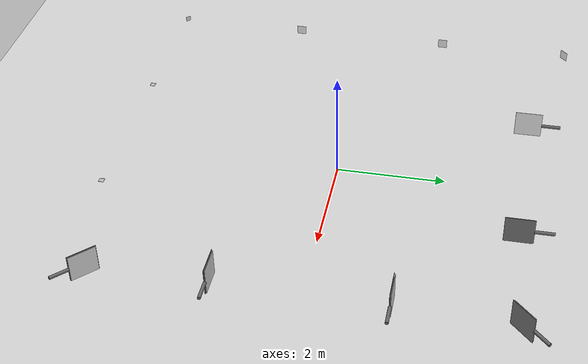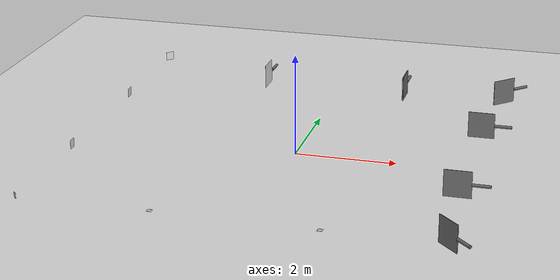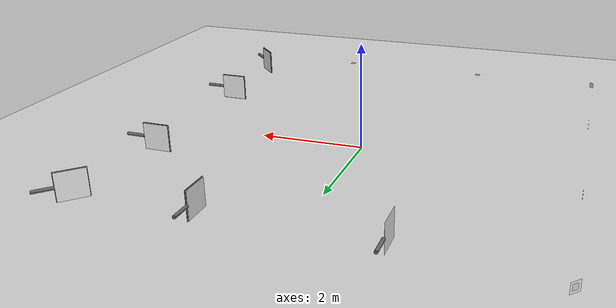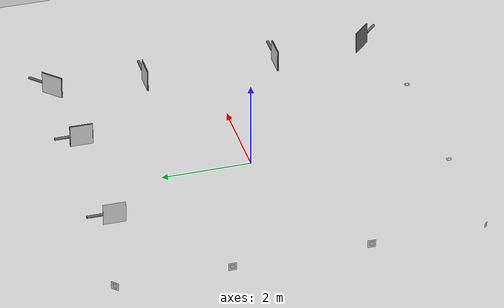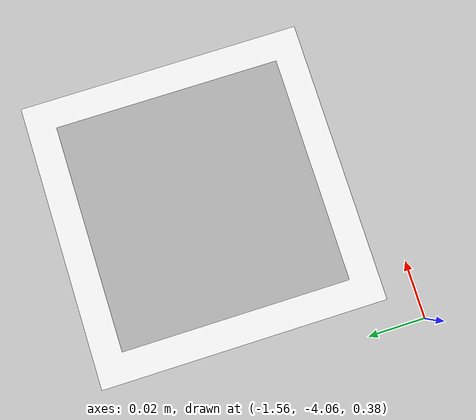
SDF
<?xml version="1.0"?>
<sdf version="1.6">
  <world name="default">
    <!-- Tweak to run at higher or lower speeds -->
    <physics name="normal" type="ode">
      <real_time_update_rate>1000</real_time_update_rate>
      <max_step_size>0.001</max_step_size>
    </physics>
    <!-- Ground plane -->
    <include>
      <uri>model://ground_plane</uri>
    </include>
    <!-- Lighting -->
    <include>
      <uri>model://sun</uri>
    </include>
    <!-- ArUco markers -->
    <model name="marker0">
      <include>
        <static>true</static>
        <uri>model://marker_0</uri>
      </include>
      <pose>4 -4 0.38 0 -1.5707963267948966 -0.7853981633974483</pose>
    </model>
    <model name="marker1">
      <include>
        <static>true</static>
        <uri>model://marker_1</uri>
      </include>
      <pose>4 -1.5 0.38 0 -1.5707963267948966 0</pose>
    </model>
    <model name="marker2">
      <include>
        <static>true</static>
        <uri>model://marker_2</uri>
      </include>
      <pose>4 1.5 0.38 0 -1.5707963267948966 0</pose>
    </model>
    <model name="marker3">
      <include>
        <static>true</static>
        <uri>model://marker_3</uri>
      </include>
      <pose>4 4 0.38 0 -1.5707963267948966 0.7853981633974483</pose>
    </model>
    <model name="marker4">
      <include>
        <static>true</static>
        <uri>model://marker_4</uri>
      </include>
      <pose>1.5 4 0.38 0 -1.5707963267948966 1.5707963267948966</pose>
    </model>
    <model name="marker5">
      <include>
        <static>true</static>
        <uri>model://marker_5</uri>
      </include>
      <pose>-1.5 4 0.38 0 -1.5707963267948966 1.5707963267948966</pose>
    </model>
    <model name="marker6">
      <include>
        <static>true</static>
        <uri>model://marker_6</uri>
      </include>
      <pose>-4 -4 0.38 0 -1.5707963267948966 3.9269908169872414</pose>
    </model>
    <model name="marker7">
      <include>
        <static>true</static>
        <uri>model://marker_7</uri>
      </include>
      <pose>-4 1.5 0.38 0 -1.5707963267948966 -3.141592653589793</pose>
    </model>
    <model name="marker8">
      <include>
        <static>true</static>
        <uri>model://marker_8</uri>
      </include>
      <pose>-4 -1.5 0.38 0 -1.5707963267948966 -3.141592653589793</pose>
    </model>
    <model name="marker9">
      <include>
        <static>true</static>
        <uri>model://marker_9</uri>
      </include>
      <pose>-4 4 0.38 0 -1.5707963267948966 -3.9269908169872414</pose>
    </model>
    <model name="marker10">
      <include>
        <static>true</static>
        <uri>model://marker_10</uri>
      </include>
      <pose>1.5 -4 0.38 0 -1.5707963267948966 -1.5707963267948966</pose>
    </model>
    <model name="marker11">
      <include>
        <static>true</static>
        <uri>model://marker_11</uri>
      </include>
      <pose>-1.5 -4 0.38 0 -1.5707963267948966 -1.5707963267948966</pose>
    </model>

  </world>
</sdf>

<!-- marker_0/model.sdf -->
<sdf version="1.6">
  <model name="aruco_marker_0">
    <static>true</static>
    <link name="link">
      <!-- Support pole: top reaches the panel's lower edge (0.35 m), no overlap -->
      <visual name="pole">
        <pose>0 0 0.175 0 0 0</pose>
        <geometry><cylinder><radius>0.03</radius><length>0.35</length></cylinder></geometry>
        <material>
          <ambient>0.3 0.3 0.3 1</ambient>
          <diffuse>0.4 0.4 0.4 1</diffuse>
          <specular>0.1 0.1 0.1 1</specular>
        </material>
      </visual>
      <collision name="pole_col">
        <pose>0 0 0.175 0 0 0</pose>
        <geometry><cylinder><radius>0.03</radius><length>0.35</length></cylinder></geometry>
      </collision>
      <!-- Marker panel 0.50 m, center 0.6 m high; lower edge at 0.35 m -->
      <!-- Local +Y face carries the texture; world yaw aims it inward. -->
      <visual name="marker">
        <pose>0 0.011 0.6 1.5708 0 0</pose>
        <geometry><box><size>0.50 0.50 0.002</size></box></geometry>
        <material>
          <ambient>1.0 1.0 1.0 1</ambient>
          <diffuse>1.0 1.0 1.0 1</diffuse>
          <specular>0.0 0.0 0.0 1</specular>
          <pbr>
            <metal>
              <albedo_map>model://aruco/marker_0/materials/textures/marker_0.png</albedo_map>
              <metalness>0.0</metalness>
              <roughness>1.0</roughness>
            </metal>
          </pbr>
        </material>
      </visual>
      <collision name="marker_col">
        <pose>0 0 0.6 0 0 0</pose>
        <geometry><box><size>0.50 0.04 0.52</size></box></geometry>
      </collision>
      <!-- Opaque gray backing on the local -Y side: occludes the texture from
           behind so a camera facing the back cannot detect a mirrored (flipped) marker. -->
      <visual name="back_panel">
        <pose>0 -0.01 0.6 1.5708 0 0</pose>
        <geometry><box><size>0.52 0.52 0.005</size></box></geometry>
        <material>
          <ambient>0.5 0.5 0.5 1</ambient>
          <diffuse>0.5 0.5 0.5 1</diffuse>
          <specular>0.1 0.1 0.1 1</specular>
        </material>
      </visual>
    </link>
  </model>
</sdf>

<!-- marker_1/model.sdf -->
<sdf version="1.6">
  <model name="aruco_marker_1">
    <static>true</static>
    <link name="link">
      <!-- Support pole: top reaches the panel's lower edge (0.35 m), no overlap -->
      <visual name="pole">
        <pose>0 0 0.175 0 0 0</pose>
        <geometry><cylinder><radius>0.03</radius><length>0.35</length></cylinder></geometry>
        <material>
          <ambient>0.3 0.3 0.3 1</ambient>
          <diffuse>0.4 0.4 0.4 1</diffuse>
          <specular>0.1 0.1 0.1 1</specular>
        </material>
      </visual>
      <collision name="pole_col">
        <pose>0 0 0.175 0 0 0</pose>
        <geometry><cylinder><radius>0.03</radius><length>0.35</length></cylinder></geometry>
      </collision>
      <!-- Marker panel 0.50 m, center 0.6 m high; lower edge at 0.35 m -->
      <!-- Local +Y face carries the texture; world yaw aims it inward. -->
      <visual name="marker">
        <pose>0 0.011 0.6 1.5708 0 0</pose>
        <geometry><box><size>0.50 0.50 0.002</size></box></geometry>
        <material>
          <ambient>1.0 1.0 1.0 1</ambient>
          <diffuse>1.0 1.0 1.0 1</diffuse>
          <specular>0.0 0.0 0.0 1</specular>
          <pbr>
            <metal>
              <albedo_map>model://aruco/marker_1/materials/textures/marker_1.png</albedo_map>
              <metalness>0.0</metalness>
              <roughness>1.0</roughness>
            </metal>
          </pbr>
        </material>
      </visual>
      <collision name="marker_col">
        <pose>0 0 0.6 0 0 0</pose>
        <geometry><box><size>0.50 0.04 0.52</size></box></geometry>
      </collision>
      <!-- Opaque gray backing on the local -Y side: occludes the texture from
           behind so a camera facing the back cannot detect a mirrored (flipped) marker. -->
      <visual name="back_panel">
        <pose>0 -0.01 0.6 1.5708 0 0</pose>
        <geometry><box><size>0.52 0.52 0.005</size></box></geometry>
        <material>
          <ambient>0.5 0.5 0.5 1</ambient>
          <diffuse>0.5 0.5 0.5 1</diffuse>
          <specular>0.1 0.1 0.1 1</specular>
        </material>
      </visual>
    </link>
  </model>
</sdf>

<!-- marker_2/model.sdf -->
<sdf version="1.6">
  <model name="aruco_marker_2">
    <static>true</static>
    <link name="link">
      <!-- Support pole: top reaches the panel's lower edge (0.35 m), no overlap -->
      <visual name="pole">
        <pose>0 0 0.175 0 0 0</pose>
        <geometry><cylinder><radius>0.03</radius><length>0.35</length></cylinder></geometry>
        <material>
          <ambient>0.3 0.3 0.3 1</ambient>
          <diffuse>0.4 0.4 0.4 1</diffuse>
          <specular>0.1 0.1 0.1 1</specular>
        </material>
      </visual>
      <collision name="pole_col">
        <pose>0 0 0.175 0 0 0</pose>
        <geometry><cylinder><radius>0.03</radius><length>0.35</length></cylinder></geometry>
      </collision>
      <!-- Marker panel 0.50 m, center 0.6 m high; lower edge at 0.35 m -->
      <!-- Local +Y face carries the texture; world yaw aims it inward. -->
      <visual name="marker">
        <pose>0 0.011 0.6 1.5708 0 0</pose>
        <geometry><box><size>0.50 0.50 0.002</size></box></geometry>
        <material>
          <ambient>1.0 1.0 1.0 1</ambient>
          <diffuse>1.0 1.0 1.0 1</diffuse>
          <specular>0.0 0.0 0.0 1</specular>
          <pbr>
            <metal>
              <albedo_map>model://aruco/marker_2/materials/textures/marker_2.png</albedo_map>
              <metalness>0.0</metalness>
              <roughness>1.0</roughness>
            </metal>
          </pbr>
        </material>
      </visual>
      <collision name="marker_col">
        <pose>0 0 0.6 0 0 0</pose>
        <geometry><box><size>0.50 0.04 0.52</size></box></geometry>
      </collision>
      <!-- Opaque gray backing on the local -Y side: occludes the texture from
           behind so a camera facing the back cannot detect a mirrored (flipped) marker. -->
      <visual name="back_panel">
        <pose>0 -0.01 0.6 1.5708 0 0</pose>
        <geometry><box><size>0.52 0.52 0.005</size></box></geometry>
        <material>
          <ambient>0.5 0.5 0.5 1</ambient>
          <diffuse>0.5 0.5 0.5 1</diffuse>
          <specular>0.1 0.1 0.1 1</specular>
        </material>
      </visual>
    </link>
  </model>
</sdf>

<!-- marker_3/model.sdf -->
<sdf version="1.6">
  <model name="aruco_marker_3">
    <static>true</static>
    <link name="link">
      <!-- Support pole: top reaches the panel's lower edge (0.35 m), no overlap -->
      <visual name="pole">
        <pose>0 0 0.175 0 0 0</pose>
        <geometry><cylinder><radius>0.03</radius><length>0.35</length></cylinder></geometry>
        <material>
          <ambient>0.3 0.3 0.3 1</ambient>
          <diffuse>0.4 0.4 0.4 1</diffuse>
          <specular>0.1 0.1 0.1 1</specular>
        </material>
      </visual>
      <collision name="pole_col">
        <pose>0 0 0.175 0 0 0</pose>
        <geometry><cylinder><radius>0.03</radius><length>0.35</length></cylinder></geometry>
      </collision>
      <!-- Marker panel 0.50 m, center 0.6 m high; lower edge at 0.35 m -->
      <!-- Local +Y face carries the texture; world yaw aims it inward. -->
      <visual name="marker">
        <pose>0 0.011 0.6 1.5708 0 0</pose>
        <geometry><box><size>0.50 0.50 0.002</size></box></geometry>
        <material>
          <ambient>1.0 1.0 1.0 1</ambient>
          <diffuse>1.0 1.0 1.0 1</diffuse>
          <specular>0.0 0.0 0.0 1</specular>
          <pbr>
            <metal>
              <albedo_map>model://aruco/marker_3/materials/textures/marker_3.png</albedo_map>
              <metalness>0.0</metalness>
              <roughness>1.0</roughness>
            </metal>
          </pbr>
        </material>
      </visual>
      <collision name="marker_col">
        <pose>0 0 0.6 0 0 0</pose>
        <geometry><box><size>0.50 0.04 0.52</size></box></geometry>
      </collision>
      <!-- Opaque gray backing on the local -Y side: occludes the texture from
           behind so a camera facing the back cannot detect a mirrored (flipped) marker. -->
      <visual name="back_panel">
        <pose>0 -0.01 0.6 1.5708 0 0</pose>
        <geometry><box><size>0.52 0.52 0.005</size></box></geometry>
        <material>
          <ambient>0.5 0.5 0.5 1</ambient>
          <diffuse>0.5 0.5 0.5 1</diffuse>
          <specular>0.1 0.1 0.1 1</specular>
        </material>
      </visual>
    </link>
  </model>
</sdf>

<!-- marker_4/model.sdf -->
<sdf version="1.6">
  <model name="aruco_marker_4">
    <static>true</static>
    <link name="link">
      <!-- Support pole: top reaches the panel's lower edge (0.35 m), no overlap -->
      <visual name="pole">
        <pose>0 0 0.175 0 0 0</pose>
        <geometry><cylinder><radius>0.03</radius><length>0.35</length></cylinder></geometry>
        <material>
          <ambient>0.3 0.3 0.3 1</ambient>
          <diffuse>0.4 0.4 0.4 1</diffuse>
          <specular>0.1 0.1 0.1 1</specular>
        </material>
      </visual>
      <collision name="pole_col">
        <pose>0 0 0.175 0 0 0</pose>
        <geometry><cylinder><radius>0.03</radius><length>0.35</length></cylinder></geometry>
      </collision>
      <!-- Marker panel 0.50 m, center 0.6 m high; lower edge at 0.35 m -->
      <!-- Local +Y face carries the texture; world yaw aims it inward. -->
      <visual name="marker">
        <pose>0 0.011 0.6 1.5708 0 0</pose>
        <geometry><box><size>0.50 0.50 0.002</size></box></geometry>
        <material>
          <ambient>1.0 1.0 1.0 1</ambient>
          <diffuse>1.0 1.0 1.0 1</diffuse>
          <specular>0.0 0.0 0.0 1</specular>
          <pbr>
            <metal>
              <albedo_map>model://aruco/marker_4/materials/textures/marker_4.png</albedo_map>
              <metalness>0.0</metalness>
              <roughness>1.0</roughness>
            </metal>
          </pbr>
        </material>
      </visual>
      <collision name="marker_col">
        <pose>0 0 0.6 0 0 0</pose>
        <geometry><box><size>0.50 0.04 0.52</size></box></geometry>
      </collision>
      <!-- Opaque gray backing on the local -Y side: occludes the texture from
           behind so a camera facing the back cannot detect a mirrored (flipped) marker. -->
      <visual name="back_panel">
        <pose>0 -0.01 0.6 1.5708 0 0</pose>
        <geometry><box><size>0.52 0.52 0.005</size></box></geometry>
        <material>
          <ambient>0.5 0.5 0.5 1</ambient>
          <diffuse>0.5 0.5 0.5 1</diffuse>
          <specular>0.1 0.1 0.1 1</specular>
        </material>
      </visual>
    </link>
  </model>
</sdf>

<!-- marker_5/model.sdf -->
<sdf version="1.6">
  <model name="aruco_marker_5">
    <static>true</static>
    <link name="link">
      <!-- Support pole: top reaches the panel's lower edge (0.35 m), no overlap -->
      <visual name="pole">
        <pose>0 0 0.175 0 0 0</pose>
        <geometry><cylinder><radius>0.03</radius><length>0.35</length></cylinder></geometry>
        <material>
          <ambient>0.3 0.3 0.3 1</ambient>
          <diffuse>0.4 0.4 0.4 1</diffuse>
          <specular>0.1 0.1 0.1 1</specular>
        </material>
      </visual>
      <collision name="pole_col">
        <pose>0 0 0.175 0 0 0</pose>
        <geometry><cylinder><radius>0.03</radius><length>0.35</length></cylinder></geometry>
      </collision>
      <!-- Marker panel 0.50 m, center 0.6 m high; lower edge at 0.35 m -->
      <!-- Local +Y face carries the texture; world yaw aims it inward. -->
      <visual name="marker">
        <pose>0 0.011 0.6 1.5708 0 0</pose>
        <geometry><box><size>0.50 0.50 0.002</size></box></geometry>
        <material>
          <ambient>1.0 1.0 1.0 1</ambient>
          <diffuse>1.0 1.0 1.0 1</diffuse>
          <specular>0.0 0.0 0.0 1</specular>
          <pbr>
            <metal>
              <albedo_map>model://aruco/marker_5/materials/textures/marker_5.png</albedo_map>
              <metalness>0.0</metalness>
              <roughness>1.0</roughness>
            </metal>
          </pbr>
        </material>
      </visual>
      <collision name="marker_col">
        <pose>0 0 0.6 0 0 0</pose>
        <geometry><box><size>0.50 0.04 0.52</size></box></geometry>
      </collision>
    </link>
  </model>
</sdf>

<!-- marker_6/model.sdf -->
<sdf version="1.6">
    <model name="marker_6">
         <link name='marker'>
            <pose frame=''>0 0 0 0 0 0</pose>
            <visual name='visual'>
                <geometry>
                    <box>
                        <size>0.1 0.1 1e-5</size>
                    </box>
                </geometry>
                <material>
                    <script>
                        <uri>model://marker_6/materials/scripts</uri>
                        <uri>model://marker_6/materials/textures</uri>
                        <name>marker_material6</name>
                    </script>
                    <ambient>1 1 1 1</ambient>
                    <diffuse>1 1 1 1</diffuse>
                    <specular>0 0 0 1</specular>
                    <emissive>1 1 1 0</emissive>
                </material>
                <pose frame=''>0 0 0 0 -0 0</pose>
                <cast_shadows>1</cast_shadows>
                <transparency>0</transparency>
            </visual>
            <collision name='collision'>
                <laser_retro>0</laser_retro>
                <max_contacts>10</max_contacts>
                <pose frame=''>0 0 0 0 -0 0</pose>
                <geometry>
                    <box>
                        <size>0.1 0.1 1e-05</size>
                    </box>
                </geometry>
            </collision>
        </link>

        <link name='marker_pad'>
            <pose frame='marker'>0 0 -1e-5 0 -0 0</pose>
            <visual name='visual'>
                <geometry>
                    <box>
                        <size>0.1 0.1 1e-5</size>
                    </box>
                </geometry>
                <material>
                    <lighting>1</lighting>
                    <script>
                        <uri>file://media/materials/scripts/gazebo.material</uri>
                        <name>Gazebo/White</name>
                    </script>
                    <ambient>0.3 0.3 0.3 1</ambient>
                    <diffuse>0.7 0.7 0.7 1</diffuse>
                    <specular>0.01 0.01 0.01 1</specular>
                    <emissive>1 1 1 0</emissive>
                </material>
                <cast_shadows>1</cast_shadows>
                <transparency>0</transparency>
            </visual>
            <collision name='collision'>
                <laser_retro>0</laser_retro>
                <max_contacts>10</max_contacts>
                <pose frame=''>0 0 0 0 -0 0</pose>
                <geometry>
                    <box>
                        <size>0.1 0.1 1e-5</size>
                    </box>
                </geometry>
            </collision>
        </link>

        <joint name='marker_JOINT_marker_pad' type='revolute'>
            <parent>marker</parent>
            <child>marker_pad</child>
            <pose frame=''>0 0 0 0 -0 0</pose>
            <axis>
                <xyz>0 0 1</xyz>
                <limit>
                    <upper>0</upper>
                    <lower>0</lower>
                </limit>
            </axis>
        </joint>

        <static>1</static>
        <allow_auto_disable>1</allow_auto_disable>

    </model>
</sdf>

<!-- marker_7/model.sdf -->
<sdf version="1.6">
        <model name="marker_7">
            <link name='marker'>
                <pose frame=''>0 0 0 0 0 0</pose>
                <visual name='visual'>
                    <geometry>
                        <box>
                            <size>0.1778 0.1778 1e-5</size>
                        </box>
                    </geometry>
                    <material>
                        <script>
                            <uri>model://marker_7/materials/scripts</uri>
                            <uri>model://marker_7/materials/textures</uri>
                            <name>ArucoVisualMarker7/Marker</name>
                        </script>
                        <ambient>1 1 1 1</ambient>
                        <diffuse>1 1 1 1</diffuse>
                        <specular>0 0 0 1</specular>
                        <emissive>1 1 1 0</emissive>
                        <shader type='vertex'>
                            <normal_map>__default__</normal_map>
                        </shader>
                    </material>
                    <pose frame=''>0 0 0 0 -0 0</pose>
                    <cast_shadows>1</cast_shadows>
                    <transparency>0</transparency>
                </visual>
                <collision name='collision'>
                    <laser_retro>0</laser_retro>
                    <max_contacts>10</max_contacts>
                    <pose frame=''>0 0 0 0 -0 0</pose>
                    <geometry>
                        <box>
                            <size>0.1 0.1 1e-05</size>
                        </box>
                    </geometry>
                </collision>
            </link>

            <link name='marker_pad'>
                <pose frame='marker'>0 0 -1e-5 0 -0 0</pose>
                <visual name='visual'>
                    <geometry>
                        <box>
                            <size>0.1 0.1 1e-5</size>
                        </box>
                    </geometry>
                    <material>
                        <lighting>1</lighting>
                        <script>
                            <uri>file://media/materials/scripts/gazebo.material</uri>
                            <name>Gazebo/White</name>
                        </script>
                        <ambient>0.3 0.3 0.3 1</ambient>
                        <diffuse>0.7 0.7 0.7 1</diffuse>
                        <specular>0.01 0.01 0.01 1</specular>
                        <emissive>1 1 1 0</emissive>
                        <shader type='vertex'>
                            <normal_map>__default__</normal_map>
                        </shader>
                    </material>
                    <cast_shadows>1</cast_shadows>
                    <transparency>0</transparency>
                </visual>
                <collision name='collision'>
                    <laser_retro>0</laser_retro>
                    <max_contacts>10</max_contacts>
                    <pose frame=''>0 0 0 0 -0 0</pose>
                    <geometry>
                        <box>
                            <size>0.1 0.1 1e-5</size>
                        </box>
                    </geometry>
                </collision>
            </link>

            <joint name='marker_JOINT_marker_pad' type='revolute'>
                <parent>marker</parent>
                <child>marker_pad</child>
                <pose frame=''>0 0 0 0 -0 0</pose>
                <axis>
                    <xyz>0 0 1</xyz>
                    <limit>
                        <upper>0</upper>
                        <lower>0</lower>
                    </limit>
                </axis>
            </joint>

            <static>1</static>
            <allow_auto_disable>1</allow_auto_disable>

        </model>
    </sdf>

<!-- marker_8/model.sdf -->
<sdf version="1.6">
        <model name="marker_8">
            <link name='marker'>
                <pose frame=''>0 0 0 0 0 0</pose>
                <visual name='visual'>
                    <geometry>
                        <box>
                            <size>0.1778 0.1778 1e-5</size>
                        </box>
                    </geometry>
                    <material>
                        <script>
                            <uri>model://marker_8/materials/scripts</uri>
                            <uri>model://marker_8/materials/textures</uri>
                            <name>ArucoVisualMarker8/Marker</name>
                        </script>
                        <ambient>1 1 1 1</ambient>
                        <diffuse>1 1 1 1</diffuse>
                        <specular>0 0 0 1</specular>
                        <emissive>1 1 1 0</emissive>
                        <shader type='vertex'>
                            <normal_map>__default__</normal_map>
                        </shader>
                    </material>
                    <pose frame=''>0 0 0 0 -0 0</pose>
                    <cast_shadows>1</cast_shadows>
                    <transparency>0</transparency>
                </visual>
                <collision name='collision'>
                    <laser_retro>0</laser_retro>
                    <max_contacts>10</max_contacts>
                    <pose frame=''>0 0 0 0 -0 0</pose>
                    <geometry>
                        <box>
                            <size>0.1 0.1 1e-05</size>
                        </box>
                    </geometry>
                </collision>
            </link>

            <link name='marker_pad'>
                <pose frame='marker'>0 0 -1e-5 0 -0 0</pose>
                <visual name='visual'>
                    <geometry>
                        <box>
                            <size>0.1 0.1 1e-5</size>
                        </box>
                    </geometry>
                    <material>
                        <lighting>1</lighting>
                        <script>
                            <uri>file://media/materials/scripts/gazebo.material</uri>
                            <name>Gazebo/White</name>
                        </script>
                        <ambient>0.3 0.3 0.3 1</ambient>
                        <diffuse>0.7 0.7 0.7 1</diffuse>
                        <specular>0.01 0.01 0.01 1</specular>
                        <emissive>1 1 1 0</emissive>
                        <shader type='vertex'>
                            <normal_map>__default__</normal_map>
                        </shader>
                    </material>
                    <cast_shadows>1</cast_shadows>
                    <transparency>0</transparency>
                </visual>
                <collision name='collision'>
                    <laser_retro>0</laser_retro>
                    <max_contacts>10</max_contacts>
                    <pose frame=''>0 0 0 0 -0 0</pose>
                    <geometry>
                        <box>
                            <size>0.1 0.1 1e-5</size>
                        </box>
                    </geometry>
                </collision>
            </link>

            <joint name='marker_JOINT_marker_pad' type='revolute'>
                <parent>marker</parent>
                <child>marker_pad</child>
                <pose frame=''>0 0 0 0 -0 0</pose>
                <axis>
                    <xyz>0 0 1</xyz>
                    <limit>
                        <upper>0</upper>
                        <lower>0</lower>
                    </limit>
                </axis>
            </joint>

            <static>1</static>
            <allow_auto_disable>1</allow_auto_disable>

        </model>
    </sdf>

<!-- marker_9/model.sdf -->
<sdf version="1.6">
        <model name="marker_9">
            <link name='marker'>
                <pose frame=''>0 0 0 0 0 0</pose>
                <visual name='visual'>
                    <geometry>
                        <box>
                            <size>0.1778 0.1778 1e-5</size>
                        </box>
                    </geometry>
                    <material>
                        <script>
                            <uri>model://marker_9/materials/scripts</uri>
                            <uri>model://marker_9/materials/textures</uri>
                            <name>ArucoVisualMarker9/Marker</name>
                        </script>
                        <ambient>1 1 1 1</ambient>
                        <diffuse>1 1 1 1</diffuse>
                        <specular>0 0 0 1</specular>
                        <emissive>1 1 1 0</emissive>
                        <shader type='vertex'>
                            <normal_map>__default__</normal_map>
                        </shader>
                    </material>
                    <pose frame=''>0 0 0 0 -0 0</pose>
                    <cast_shadows>1</cast_shadows>
                    <transparency>0</transparency>
                </visual>
                <collision name='collision'>
                    <laser_retro>0</laser_retro>
                    <max_contacts>10</max_contacts>
                    <pose frame=''>0 0 0 0 -0 0</pose>
                    <geometry>
                        <box>
                            <size>0.1 0.1 1e-05</size>
                        </box>
                    </geometry>
                </collision>
            </link>

            <link name='marker_pad'>
                <pose frame='marker'>0 0 -1e-5 0 -0 0</pose>
                <visual name='visual'>
                    <geometry>
                        <box>
                            <size>0.1 0.1 1e-5</size>
                        </box>
                    </geometry>
                    <material>
                        <lighting>1</lighting>
                        <script>
                            <uri>file://media/materials/scripts/gazebo.material</uri>
                            <name>Gazebo/White</name>
                        </script>
                        <ambient>0.3 0.3 0.3 1</ambient>
                        <diffuse>0.7 0.7 0.7 1</diffuse>
                        <specular>0.01 0.01 0.01 1</specular>
                        <emissive>1 1 1 0</emissive>
                        <shader type='vertex'>
                            <normal_map>__default__</normal_map>
                        </shader>
                    </material>
                    <cast_shadows>1</cast_shadows>
                    <transparency>0</transparency>
                </visual>
                <collision name='collision'>
                    <laser_retro>0</laser_retro>
                    <max_contacts>10</max_contacts>
                    <pose frame=''>0 0 0 0 -0 0</pose>
                    <geometry>
                        <box>
                            <size>0.1 0.1 1e-5</size>
                        </box>
                    </geometry>
                </collision>
            </link>

            <joint name='marker_JOINT_marker_pad' type='revolute'>
                <parent>marker</parent>
                <child>marker_pad</child>
                <pose frame=''>0 0 0 0 -0 0</pose>
                <axis>
                    <xyz>0 0 1</xyz>
                    <limit>
                        <upper>0</upper>
                        <lower>0</lower>
                    </limit>
                </axis>
            </joint>

            <static>1</static>
            <allow_auto_disable>1</allow_auto_disable>

        </model>
    </sdf>

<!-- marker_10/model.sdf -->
<sdf version="1.5">
  <model name='Marker_10'>
    <pose frame=''>0 0 0 -3.14 0 -3.14</pose>
    <static>1</static>

    <!-- Link ArUco marker -->
    <link name='marker_link'>
      <collision name='collision'>
        <geometry>
          <mesh>
            <uri>model://aruco_gazebo/marker_10/meshes/10.dae</uri>
          </mesh>
        </geometry>
      </collision>

      <visual name='visual'>
        <cast_shadows>0</cast_shadows>
        <geometry>
          <mesh>
            <uri>model://aruco_gazebo/marker_10/meshes/10.dae</uri>
          </mesh>
        </geometry>
      </visual>

      <self_collide>0</self_collide>
      <enable_wind>0</enable_wind>
      <kinematic>0</kinematic>
    </link>

    <!-- Link White border frame -->
    <link name="white_border_link">
      <pose>-0.00001 0 0 0 0 0</pose>
      <visual name="white_border_visual">
        <geometry>
          <box>
            <size>0.00001 0.1 0.1</size>
          </box>
        </geometry>
        <material>
          <ambient>1 1 1 1</ambient>
          <diffuse>1 1 1 1</diffuse>
          <specular>0.1 0.1 0.1 1</specular>
          <emissive>0 0 0 0</emissive>
        </material>
        <cast_shadows>0</cast_shadows>
      </visual>
      <self_collide>0</self_collide>
      <enable_wind>0</enable_wind>
      <kinematic>0</kinematic>
    </link>

    <!-- Joint fixed เชื่อมสองลิงก์นี้ -->
    <joint name="fix_marker_to_border" type="fixed">
      <parent>marker_link</parent>
      <child>white_border_link</child>
      <pose>0 0 0 0 0 0</pose>
    </joint>

  </model>
</sdf>

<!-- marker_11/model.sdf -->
<sdf version="1.5">
  <model name='Marker_11'>
    <pose frame=''>0 0 0 -3.14 0 -3.14</pose>
    <static>1</static>

    <!-- Link ArUco marker -->
    <link name='marker_link'>
      <collision name='collision'>
        <geometry>
          <mesh>
            <uri>model://aruco_gazebo/marker_11/meshes/11.dae</uri>
          </mesh>
        </geometry>
      </collision>

      <visual name='visual'>
        <cast_shadows>0</cast_shadows>
        <geometry>
          <mesh>
            <uri>model://aruco_gazebo/marker_11/meshes/11.dae</uri>
          </mesh>
        </geometry>
      </visual>

      <self_collide>0</self_collide>
      <enable_wind>0</enable_wind>
      <kinematic>0</kinematic>
    </link>

    <!-- Link White border frame -->
    <link name="white_border_link">
      <pose>-0.00001 0 0 0 0 0</pose>
      <visual name="white_border_visual">
        <geometry>
          <box>
            <size>0.00001 0.1 0.1</size>
          </box>
        </geometry>
        <material>
          <ambient>1 1 1 1</ambient>
          <diffuse>1 1 1 1</diffuse>
          <specular>0.1 0.1 0.1 1</specular>
          <emissive>0 0 0 0</emissive>
        </material>
        <cast_shadows>0</cast_shadows>
      </visual>
      <self_collide>0</self_collide>
      <enable_wind>0</enable_wind>
      <kinematic>0</kinematic>
    </link>

    <!-- Joint fixed เชื่อมสองลิงก์นี้ -->
    <joint name="fix_marker_to_border" type="fixed">
      <parent>marker_link</parent>
      <child>white_border_link</child>
      <pose>0 0 0 0 0 0</pose>
    </joint>

  </model>
</sdf>
